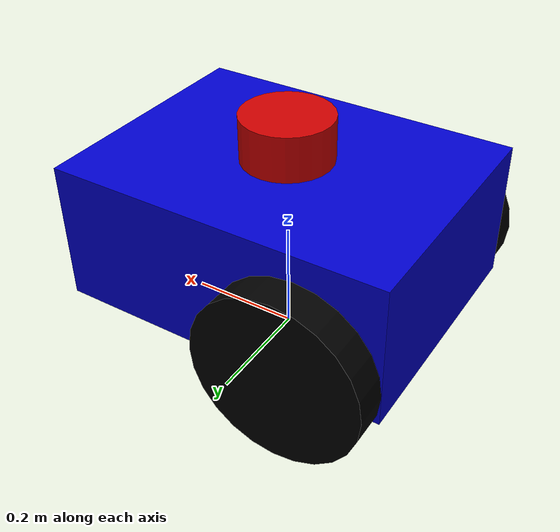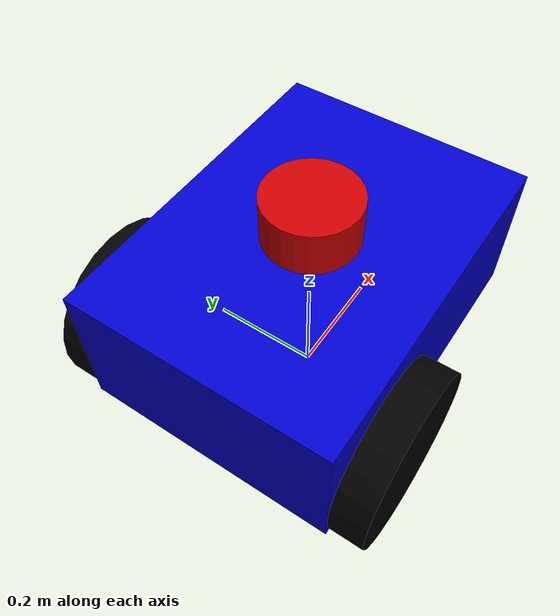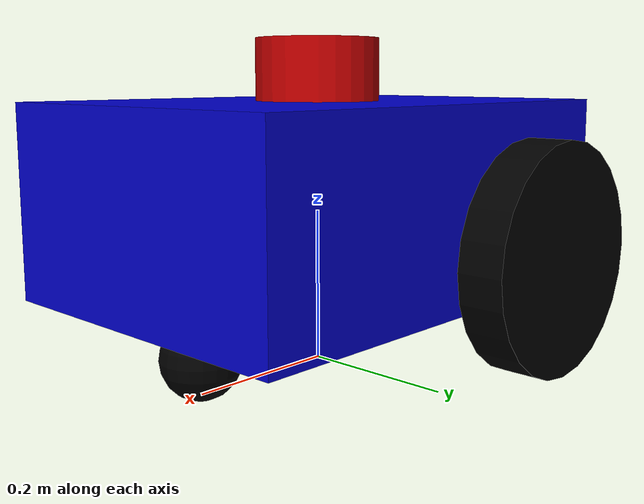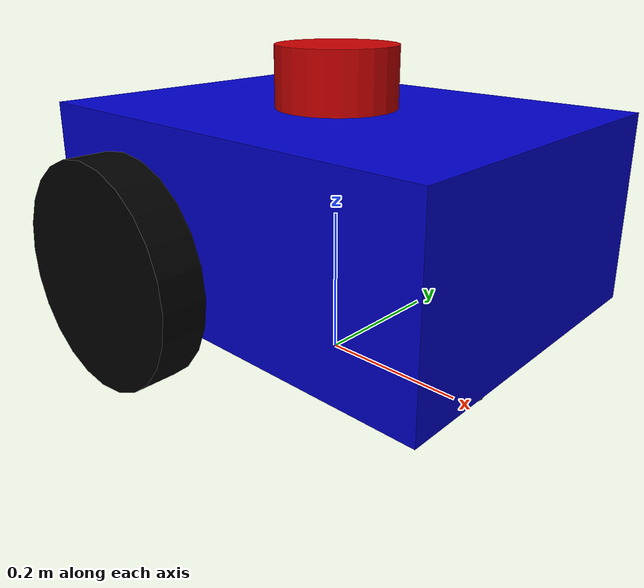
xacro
<?xml version="1.0"?>
<robot name="tortoisebot" xmlns:xacro="http://www.ros.org/wiki/xacro">

  <!-- Include materials -->
  <xacro:include filename="$(find tortoisebot_description)/urdf/materials.xacro"/>

  <!-- Properties -->
  <xacro:property name="base_width" value="0.45"/>
  <xacro:property name="base_length" value="0.60"/>
  <xacro:property name="base_height" value="0.25"/>
  <xacro:property name="wheel_radius" value="0.15"/>
  <xacro:property name="wheel_width" value="0.06"/>
  <xacro:property name="wheel_ygap" value="0.03"/>
  <xacro:property name="wheel_zoff" value="0.07"/>
  <xacro:property name="wheel_xoff" value="0.15"/>
  <xacro:property name="caster_xoff" value="0.20"/>
  <xacro:property name="caster_radius" value="0.05"/>

  <!-- Base Link -->
  <link name="base_link">
    <visual>
      <geometry>
        <box size="${base_length} ${base_width} ${base_height}"/>
      </geometry>
      <material name="blue"/>
    </visual>
    <collision>
      <geometry>
        <box size="${base_length} ${base_width} ${base_height}"/>
      </geometry>
    </collision>
    <inertial>
      <mass value="15"/>
      <inertia ixx="1.0" ixy="0.0" ixz="0.0" iyy="1.2" iyz="0.0" izz="1.2"/>
    </inertial>
  </link>

  <!-- Base Footprint -->
  <link name="base_footprint"/>
  <joint name="base_joint" type="fixed">
    <parent link="base_footprint"/>
    <child link="base_link"/>
    <origin xyz="0.0 0.0 ${wheel_radius + wheel_zoff}" rpy="0 0 0"/>
  </joint>

  <!-- Wheels Macro -->
  <xacro:macro name="wheel" params="prefix x_reflect y_reflect">
    <link name="${prefix}_link">
      <visual>
        <origin xyz="0 0 0" rpy="${pi/2} 0 0"/>
        <geometry>
          <cylinder radius="${wheel_radius}" length="${wheel_width}"/>
        </geometry>
        <material name="black"/>
      </visual>
      <collision>
        <origin xyz="0 0 0" rpy="${pi/2} 0 0"/>
        <geometry>
          <cylinder radius="${wheel_radius}" length="${wheel_width}"/>
        </geometry>
      </collision>
      <inertial>
        <mass value="3.5"/>
        <origin xyz="0 0 0" rpy="${pi/2} 0 0"/>
        <inertia ixx="0.025" ixy="0.0" ixz="0.0" iyy="0.025" iyz="0.0" izz="0.025"/>
      </inertial>
    </link>
    <joint name="${prefix}_joint" type="continuous">
      <parent link="base_link"/>
      <child link="${prefix}_link"/>
      <origin xyz="${x_reflect * wheel_xoff} ${y_reflect * (base_width/2 + wheel_ygap)} ${-wheel_zoff}" rpy="0 0 0"/>
      <axis xyz="0 1 0"/>
      <dynamics damping="0.1" friction="0.1"/>
    </joint>
  </xacro:macro>

  <xacro:wheel prefix="drivewhl_l" x_reflect="-1" y_reflect="1"/>
  <xacro:wheel prefix="drivewhl_r" x_reflect="-1" y_reflect="-1"/>

  <!-- Caster Wheel -->
  <link name="front_caster">
    <visual>
      <origin xyz="0 0 0" rpy="0 0 0"/>
      <geometry>
        <sphere radius="${caster_radius}"/>
      </geometry>
      <material name="black"/>
    </visual>

    <collision>
      <origin xyz="0 0 0" rpy="0 0 0"/>
      <geometry>
        <sphere radius="${caster_radius}"/>
      </geometry>
    </collision>

    <inertial>
      <mass value="1.0"/>
      <origin xyz="0 0 0" rpy="0 0 0"/>
      <inertia ixx="0.015" ixy="0.0" ixz="0.0" iyy="0.015" iyz="0.0" izz="0.015"/>
    </inertial>

  </link>
  <joint name="caster_joint" type="fixed">
    <parent link="base_link"/>
    <child link="front_caster"/>
    <origin xyz="${caster_xoff} 0.0 ${-base_height/2 - caster_radius}" rpy="0 0 0"/>
  </joint>

  <!-- Lidar Link -->
  <link name="lidar_link">
    <visual>
      <origin xyz="0 0 0" rpy="0 0 0"/>
      <geometry>
        <cylinder radius="0.08" length="0.08"/>
      </geometry>
      <material name="red"/>
    </visual>
    <collision>
      <origin xyz="0 0 0" rpy="0 0 0"/>
      <geometry>
        <cylinder radius="0.06" length="0.05"/>
      </geometry>
    </collision>
    <inertial>
      <mass value="0.2"/>
      <origin xyz="0 0 0" rpy="0 0 0"/>
      <inertia ixx="0.002" ixy="0.0" ixz="0.0" iyy="0.002" iyz="0.0" izz="0.002"/>
    </inertial>
  </link>
  <joint name="lidar_joint" type="fixed">
    <parent link="base_link"/>
    <child link="lidar_link"/>
    <origin xyz="0 0 ${base_height/2 + 0.04}" rpy="0 0 0"/>
  </joint>

  <!-- ==================== GAZEBO PROPERTIES ==================== -->
  <gazebo reference="base_link">
    <material>Gazebo/Blue</material>
  </gazebo>

  <gazebo reference="drivewhl_l_link">
    <material>Gazebo/Black</material>
  </gazebo>

  <gazebo reference="drivewhl_r_link">
    <material>Gazebo/Black</material>
  </gazebo>

  <gazebo reference="front_caster">
    <material>Gazebo/Black</material>
  </gazebo>

  <gazebo reference="lidar_link">
    <material>Gazebo/Red</material>
  </gazebo>

  <!-- ==================== GAZEBO PLUGINS ==================== -->

  <!-- SENSORS SYSTEM - M UST BE FIRST -->
  <gazebo>
    <plugin filename="gz-sim-sensors-system" name="gz::sim::systems::Sensors">
      <render_engine>ogre2</render_engine>
    </plugin>
  </gazebo>

  <!-- Differential Drive Plugin -->
  <gazebo>
    <plugin filename="gz-sim-diff-drive-system" name="gz::sim::systems::DiffDrive">
      <left_joint>drivewhl_l_joint</left_joint>
      <right_joint>drivewhl_r_joint</right_joint>
      <wheel_separation>${base_width + 2*wheel_ygap}</wheel_separation>
      <wheel_radius>${wheel_radius}</wheel_radius>
      <topic>cmd_vel</topic>
      <odom_topic>odom</odom_topic>
      <frame_id>odom</frame_id>
      <child_frame_id>base_link</child_frame_id>
      <publish_odom>true</publish_odom>
      <publish_odom_tf>true</publish_odom_tf>
      <max_linear_velocity>2.0</max_linear_velocity>
      <max_angular_velocity>2.0</max_angular_velocity>
      <odom_publish_frequency>50</odom_publish_frequency>
    </plugin>
  </gazebo>

  <!-- Joint State Publisher Plugin -->
  <gazebo>
    <plugin filename="gz-sim-joint-state-publisher-system" name="gz::sim::systems::JointStatePublisher">
      <joint_name>drivewhl_l_joint</joint_name>
      <joint_name>drivewhl_r_joint</joint_name>
      <topic>/joint_states</topic>
      <update_rate>50</update_rate>
    </plugin>
  </gazebo>

   <gazebo reference="lidar_link">
    <sensor name="lidar_sensor" type="gpu_lidar">
      <always_on>true</always_on>
      <update_rate>10</update_rate>
      <visualize>true</visualize>
      <topic>scan</topic>
      <lidar>
        <scan>
          <horizontal>
            <samples>31</samples>
            <resolution>1</resolution>
            <min_angle>-0.2617</min_angle>
            <max_angle>0.2617</max_angle>
          </horizontal>
          <vertical>
            <samples>1</samples>
            <resolution>1</resolution>
            <min_angle>0</min_angle>
            <max_angle>0</max_angle>
          </vertical>
        </scan>
        <range>
          <min>0.1</min>
          <max>10.0</max>
          <resolution>0.01</resolution>
        </range>
        <noise>
          <type>gaussian</type>
          <mean>0.0</mean>
          <stddev>0.01</stddev>
        </noise>
      </lidar>
    </sensor>
  </gazebo>
</robot>

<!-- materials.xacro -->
<robot xmlns:xacro="http://www.ros.org/wiki/xacro">

  <!-- Material definitions -->
  <material name="blue">
    <color rgba="0.0 0.0 0.8 1.0"/>
  </material>

  <material name="black">
    <color rgba="0.0 0.0 0.0 1.0"/>
  </material>

  <material name="white">
    <color rgba="1.0 1.0 1.0 1.0"/>
  </material>

  <material name="red">
    <color rgba="0.8 0.0 0.0 1.0"/>
  </material>

  <material name="green">
    <color rgba="0.0 0.8 0.0 1.0"/>
  </material>

  <material name="grey">
    <color rgba="0.5 0.5 0.5 1.0"/>
  </material>

  <material name="orange">
    <color rgba="1.0 0.4 0.0 1.0"/>
  </material>

  <material name="brown">
    <color rgba="0.4 0.2 0.0 1.0"/>
  </material>

  <material name="yellow">
    <color rgba="1.0 1.0 0.0 1.0"/>
  </material>

</robot>
